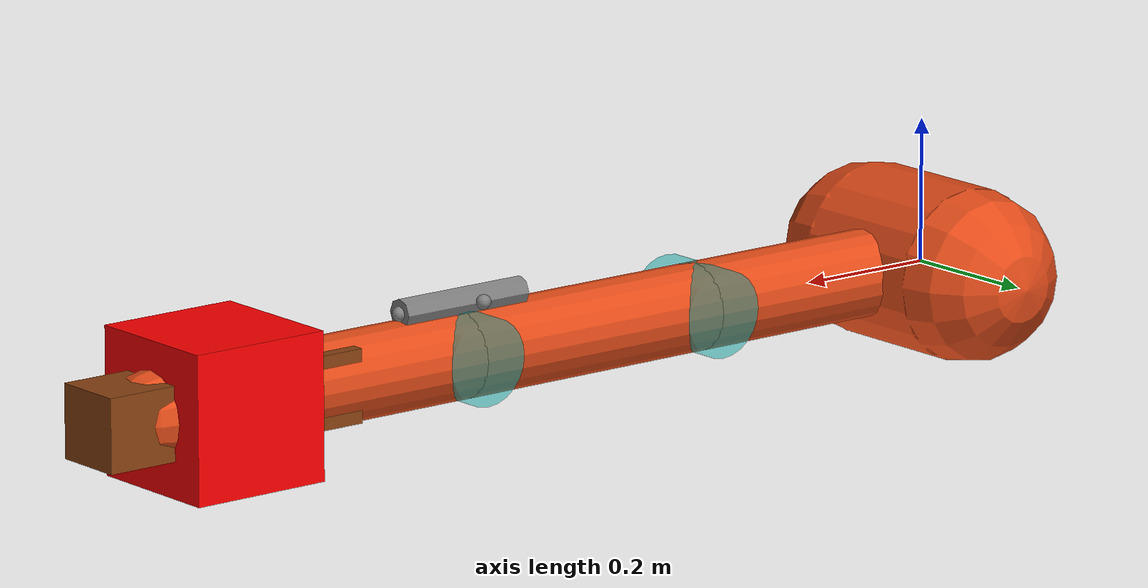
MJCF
<mujoco model="arm3d">
    <compiler inertiafromgeom="true" angle="radian" coordinate="local" />
    <option timestep="0.01" gravity="0 0 0" iterations="20" integrator="Euler" />
    <visual>
        <headlight diffuse=".7 .7 .7"/>
    </visual>

    <default>
        <joint armature='0.04' damping="1" limited="true"/>
        <geom rgba=".9 .3 .1 1" friction=".8 .1 .1" density="300" margin="0.002" condim="1" contype="1" conaffinity="1"/>
        <site type="sphere" size="0.01"/>
        <tendon width="0.02"/>
    </default>

    <worldbody>
        <body name="palm" pos="0 0 0">
            <geom type="capsule" fromto="0 -0.1 0 0 0.1 0" size="0.12"/>

            <body name="proximal_1" pos="0 0 0">
                <joint name="proximal_j_1" type="hinge" pos="0 0 0" axis="0 1 0" range="-1.57 1.57" damping="1.0" />
                <geom type="capsule"  fromto="0 0 0 0.4 0 0" size="0.06" contype="1" conaffinity="1"/>
                <body name="distal_1" pos="0.4 0 0">
                    <geom name="DIP_wrap1"  type="cylinder" pos="0 0 0"
                    zaxis="0 1 0" size="0.06 0.06" rgba="0 .7 .7 .5"/>
                    <joint name="distal_j_1" type="hinge" pos="0 0 0" axis="0 1 0" range="-1.57 1.57" damping="1.0"/>
                    <geom type="capsule"  fromto="0 0 0 0.4 0 0" size="0.06" contype="1" conaffinity="1"/>
                    <site name="top_4" pos="0.3 0 0.07"/>
                    <site name="top_6" pos="0.4 0.05 0.08"/>
                    <body name="distal_2" pos="0.4 0 0">
                        <geom name="DIP_wrap2"  type="cylinder" pos="0 0 0"
                        zaxis="0 1 0" size="0.06 0.06" rgba="0 .7 .7 .5"/>
                        <site name="top_5" pos="0.1 0 0.07"/>
                        <joint name="distal_j_2" type="hinge" pos="0 0 0" axis="0 1 0" range="-1.57 1.57" damping="1.0"/>
                        <geom type="capsule" fromto="0 0 0 0.5 0 0" size="0.06" contype="1" conaffinity="1"/>
                        <body name="distal_4" pos="0.4 0 0">
                            <site name="tip arm" pos="0 0 0" size="0.01" />
                        </body>
                    </body>
                </body>
            </body>
        </body>
        <body name="object" pos="1.2 0.0 0.0">
            <geom rgba="0.54 0.26 0.07 1" type="box" size="0.2 0.05 0.05" density='10' contype="1" conaffinity="1"/>
            <joint name="obj_slidez" type="slide" pos="0.1 0.025 0.025" axis="0 0 1" range="-0.6 0.6" damping="0.5"/>
            <body name="distal_10" pos="0 0 0">
                <site name="obj_pos" pos="0.1 0.025 0.025" size="0.01" />
            </body>
        </body>
        <body name="goal" pos="1.2 0 0">
            <geom rgba="1. 0. 0. 1" type="box" size="0.1 0.1 0.1" density='0.00001' contype="0" conaffinity="0"/>
            <body name="distal_11" pos="0 0 0">
                <site name="goal_pos" pos="0.05 0.05 0.05" size="0.01" />
            </body>
        </body>
    </worldbody>
    <tendon>
        <fixed name="T0p">
            <joint joint="proximal_j_1"  coef="0.05"/>
            <joint joint="distal_j_1"  coef="0.01"/>
        </fixed>
        <fixed name="T1p">
            <joint joint="distal_j_1"  coef="0.025"/>
        </fixed>
        <spatial name="flexorShort">
            <site site="top_4"/>
            <geom geom="DIP_wrap2" sidesite="top_6"/>
            <site site="top_5"/>
        </spatial>

    </tendon>

    <actuator>
        <motor tendon='T0p' name='T0p_actuato'/>
        <motor tendon='T1p' name='T1p_actuato'/>
        <motor tendon='flexorShort' name='flexorShort_actuaor'/>
    </actuator>
</mujoco>
